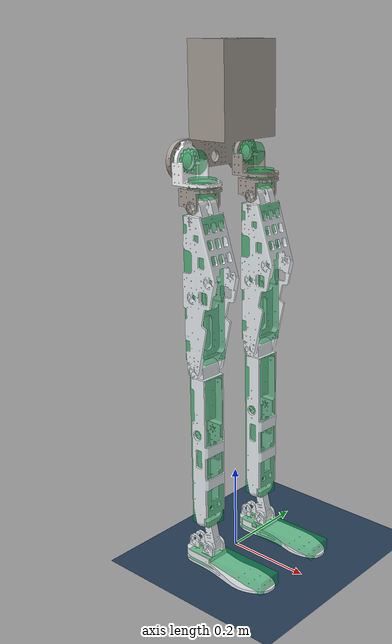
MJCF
<mujoco>
  <option timestep="0.001" iterations='50' solver='PGS' gravity='0 0 -9.81' />
  <compiler angle="radian" autolimits="true" meshdir="../meshes" />
  <default>
    <joint limited="true" armature="0.05" damping="0.01"/>
    <motor ctrllimited="true" ctrlrange="-100 100"/>
    <equality solref="0.005 1"/>
  </default>
  <asset>
    <mesh name="base_link" file="base_link.STL" />
    <mesh name="ll1" file="ll1.STL" />
    <mesh name="ll2" file="ll2.STL" />
    <mesh name="ll3" file="ll3.STL" />
    <mesh name="ll4" file="ll4.STL" />
    <mesh name="ll5" file="ll5.STL" />
    <mesh name="rl1" file="rl1.STL" />
    <mesh name="rl2" file="rl2.STL" />
    <mesh name="rl3" file="rl3.STL" />
    <mesh name="rl4" file="rl4.STL" />
    <mesh name="rl5" file="rl5.STL" />
    <texture type="skybox" builtin="gradient" rgb1="0.3 0.5 0.7" rgb2="0 0 0" width="512" height="3072" />
    <texture type="2d" name="groundplane" builtin="checker" mark="edge" rgb1="0.2 0.3 0.4" rgb2="0.1 0.2 0.3" markrgb="0.8 0.8 0.8" width="300" height="300" />
    <material name="groundplane" texture="groundplane" texuniform="true" texrepeat="5 5" reflectance="0.2" />
  </asset>
  <worldbody>
    <body name="base_link" pos="0.0 0.0 0.975" quat="1.0 0.0 0.0 0.0">
      <inertial mass="25.4" pos="-0.00058348 -3.6892e-07 0.098631" quat="0.999999851 -1.738e-05 0 0" diaginertia="0.13869 0.10486 0.075742" />
      <joint name="dummy_to_base_link" type="free" pos="0.0 0.0 0.0" axis="0.0 0.0 1.0" range="0.0 0.0" damping="0.0" stiffness="0.0" armature="0.0" frictionloss="0.0" />
      <geom type="mesh" mesh="base_link" contype="0" conaffinity="0" pos="0.0 0.0 0.0" quat="1.0 0.0 0.0 0.0" rgba="0.65098 0.61961 0.58824 1" />
      <geom rgba="0 0.7 0.3 0.5" type="box" pos="0.0 0.0 0.10" quat="1.0 0.0 0.0 0.0" size="0.05 0.08 0.10" contype="1" conaffinity="1" friction="1.0 0.005 0.0001" />
      <body name="ll1" pos="-0.055306 0.0925 -0.043" quat="1.0 0.0 0.0 0.0">
        <inertial mass="1.73" pos="0.0203 0.0203 -0.021882" quat="0.678165 0.678164 -0.200231 0.200231" diaginertia="0.00064365 0.00040381 0.00057925" />
        <joint name="left_leg_hip_roll" type="hinge" pos="0.0 0.0 0.0" axis="-1 0 0" range="-1.57 0.17" damping="0.0" stiffness="0.0" armature="0.05" frictionloss="0.175" />
        <geom type="mesh" mesh="ll1" contype="0" conaffinity="0" pos="0.0 0.0 0.0" quat="1.0 0.0 0.0 0.0" rgba="0.65098 0.61961 0.58824 1" />
        <geom rgba="0 0.7 0.3 0.5" type="cylinder" pos="0.02 0.0 0.0" quat="0.707 0.0 0.707 0.0" size="0.025 0.025" contype="1" conaffinity="1" friction="1.0 0.005 0.0001" />
        <body name="ll2" pos="0.0540088 0 -0.0425" quat="1.0 0.0 0.0 0.0">
          <inertial mass="0.55" pos="-0.011966 -9.5758e-09 -0.023875" quat="0.44166 0.44166 -0.552211 0.552211" diaginertia="0.00030663 0.00020556 0.00040354" />
          <joint name="left_leg_hip_yaw" type="hinge" pos="0.0 0.0 0.0" axis="0 0 1" range="-0.79 0.79" damping="0.0" stiffness="0.0" armature="0.05" frictionloss="0.075" />
          <geom type="mesh" mesh="ll2" contype="0" conaffinity="0" pos="0.0 0.0 0.0" quat="1.0 0.0 0.0 0.0" rgba="0.65098 0.61961 0.58824 1" />
          <geom rgba="0 0.7 0.3 0.5" type="cylinder" pos="0.0 0.0 -0.01" quat="1.0 0.0 0.0 0.0" size="0.03 0.02" contype="1" conaffinity="1" friction="1.0 0.005 0.0001" />
          <body name="ll3" pos="0 0 -0.0455" quat="1.0 0.0 0.0 0.0">
            <inertial mass="5.049" pos="0.01087 -4.44e-05 -0.18406" quat="0.706566 0.036258 0.0363586 0.705782" diaginertia="0.23235 0.23924 0.011741" />
            <joint name="left_leg_hip_pitch" type="hinge" pos="0.0 0.0 0.0" axis="0 -1 0" range="-1.4 0.34" damping="0.0" stiffness="0.0" armature="0.05" frictionloss="0.075" />
            <geom type="mesh" mesh="ll3" contype="0" conaffinity="0" pos="0.0 0.0 0.0" quat="1.0 0.0 0.0 0.0" rgba="0.89804 0.91765 0.92941 1" />
            <geom rgba="0 0.7 0.3 0.5" type="box" pos="0.0 0.0 -0.18" quat="1.0 0.0 0.0 0.0" size="0.03 0.03 0.16" contype="1" conaffinity="1" friction="1.0 0.005 0.0001" />
            <body name="ll4" pos="0 0 -0.3596" quat="1.0 0.0 0.0 0.0">
              <inertial mass="1.993" pos="-0.0029 -0.00028 -0.231" quat="0.731204 -0.00659271 -0.00712089 0.68209" diaginertia="0.13785 0.13792 0.001226" />
              <joint name="left_knee" type="hinge" pos="0.0 0.0 0.0" axis="0 1 0" range="0 1.4" damping="0.0" stiffness="0.0" armature="0.05" frictionloss="0.075" />
              <geom type="mesh" mesh="ll4" contype="0" conaffinity="0" pos="0.0 0.0 0.0" quat="1.0 0.0 0.0 0.0" rgba="0.89804 0.91765 0.92941 1" />
              <geom rgba="0 0.7 0.3 0.5" type="box" pos="0.0 0.0 -0.20" quat="1.0 0.0 0.0 0.0" size="0.025 0.025 0.18" contype="1" conaffinity="1" friction="1.0 0.005 0.0001" />
              <body name="ll5" pos="0.015 0 -0.44" quat="1.0 0.0 0.0 0.0">
                <inertial mass="1.118" pos="0.0296 -0.002 -0.034" quat="0.0842257 0.672271 0.0840174 0.730684" diaginertia="0.000587 0.005066 0.00537" />
                <joint name="left_leg_ank_pitch" type="hinge" pos="0.0 0.0 0.0" axis="0 1 0" range="-0.87 0.87" damping="0.0" stiffness="0.0" armature="0.05" frictionloss="0.075" />
                <geom type="mesh" mesh="ll5" contype="0" conaffinity="0" pos="0.0 0.0 0.0" quat="1.0 0.0 0.0 0.0" rgba="0.89804 0.91765 0.92941 1" />
                <geom rgba="0 0.7 0.3 0.5" type="box" pos="0.06 0.00 -0.03" quat="1.0 0.0 0.0 0.0" size="0.11 0.03 0.015" contype="1" conaffinity="1" friction="1.0 0.005 0.0001" />
              </body>
            </body>
          </body>
        </body>
      </body>
      <body name="rl1" pos="-0.0553058 -0.0925 -0.043" quat="1.0 0.0 0.0 0.0">
        <inertial mass="1.73" pos="0.0203 0.0203 -0.021882" quat="0.678165 0.678164 -0.200231 0.200231" diaginertia="0.00064365 0.00040381 0.00057925" />
        <joint name="right_leg_hip_roll" type="hinge" pos="0.0 0.0 0.0" axis="-1 0 0" range="-0.17 1.57" damping="0.0" stiffness="0.0" armature="0.05" frictionloss="0.175" />
        <geom type="mesh" mesh="rl1" contype="0" conaffinity="0" pos="0.0 0.0 0.0" quat="1.0 0.0 0.0 0.0" rgba="1 1 1 1" />
        <geom rgba="0 0.7 0.3 0.5" type="cylinder" pos="0.02 0.0 0.0" quat="0.707 0.0 0.707 0.0" size="0.025 0.025" contype="1" conaffinity="1" friction="1.0 0.005 0.0001" />
        <body name="rl2" pos="0.0540088 0 -0.0425" quat="1.0 0.0 0.0 0.0">
          <inertial mass="0.55" pos="-0.011966 -9.5758e-09 -0.023875" quat="0.44166 0.44166 -0.552211 0.552211" diaginertia="0.00030663 0.00020556 0.00040354" />
          <joint name="right_leg_hip_yaw" type="hinge" pos="0.0 0.0 0.0" axis="0 0 1" range="-0.79 0.79" damping="0.0" stiffness="0.0" armature="0.05" frictionloss="0.075" />
          <geom type="mesh" mesh="rl2" contype="0" conaffinity="0" pos="0.0 0.0 0.0" quat="1.0 0.0 0.0 0.0" rgba="0.65098 0.61961 0.58824 1" />
          <geom rgba="0 0.7 0.3 0.5" type="cylinder" pos="0.0 0.0 -0.01" quat="1.0 0.0 0.0 0.0" size="0.03 0.02" contype="1" conaffinity="1" friction="1.0 0.005 0.0001" />
          <body name="rl3" pos="0 0 -0.0455" quat="1.0 0.0 0.0 0.0">
            <inertial mass="5.049" pos="0.01087 -4.44e-05 -0.19733" quat="0.706566 0.036258 0.0363586 0.705782" diaginertia="0.23235 0.23924 0.011741" />
            <joint name="right_leg_hip_pitch" type="hinge" pos="0.0 0.0 0.0" axis="0 -1 0" range="-1.4 0.34" damping="0.0" stiffness="0.0" armature="0.05" frictionloss="0.075" />
            <geom type="mesh" mesh="rl3" contype="0" conaffinity="0" pos="0.0 0.0 0.0" quat="1.0 0.0 0.0 0.0" rgba="0.89804 0.91765 0.92941 1" />
            <geom rgba="0 0.7 0.3 0.5" type="box" pos="0.0 0.0 -0.18" quat="1.0 0.0 0.0 0.0" size="0.03 0.03 0.16" contype="1" conaffinity="1" friction="1.0 0.005 0.0001" />
            <body name="rl4" pos="0 0 -0.3596" quat="1.0 0.0 0.0 0.0">
              <inertial mass="1.993" pos="-0.0029 -0.00028 -0.231" quat="0.731204 -0.00659271 -0.00712089 0.68209" diaginertia="0.13785 0.13792 0.001226" />
              <joint name="right_knee" type="hinge" pos="0.0 0.0 0.0" axis="0 1 0" range="0 1.4" damping="0.0" stiffness="0.0" armature="0.05" frictionloss="0.075" />
              <geom type="mesh" mesh="rl4" contype="0" conaffinity="0" pos="0.0 0.0 0.0" quat="1.0 0.0 0.0 0.0" rgba="0.89804 0.91765 0.92941 1" />
              <geom rgba="0 0.7 0.3 0.5" type="box" pos="0.0 0.0 -0.20" quat="1.0 0.0 0.0 0.0" size="0.025 0.025 0.18" contype="1" conaffinity="1" friction="1.0 0.005 0.0001" />
              <body name="rl5" pos="0.015 0 -0.44" quat="1.0 0.0 0.0 0.0">
                <inertial mass="1.118" pos="0.0296 -0.002 -0.034" quat="0.0842257 0.672271 0.0840174 0.730684" diaginertia="0.000587 0.005066 0.00537" />
                <joint name="right_leg_ank_pitch" type="hinge" pos="0.0 0.0 0.0" axis="0 -1 0" range="-0.87 0.87" damping="0.0" stiffness="0.0" armature="0.05" frictionloss="0.075" />
                <geom type="mesh" mesh="rl5" contype="0" conaffinity="0" pos="0.0 0.0 0.0" quat="1.0 0.0 0.0 0.0" rgba="0.89804 0.91765 0.92941 1" />
                <geom rgba="0 0.7 0.3 0.5" type="box" pos="0.06 0.00 -0.03" quat="1.0 0.0 0.0 0.0" size="0.11 0.03 0.015" contype="1" conaffinity="1" friction="1.0 0.005 0.0001" />
              </body>
            </body>
          </body>
        </body>
      </body>
    </body>
    <light pos="0 0 3.5" dir="0 0 -1" directional="true" />
    <geom name="floor" size="0 0 0.05" type="plane" material="groundplane" condim="3" conaffinity="15"  friction=".5 0.005 0.0001"  />
  </worldbody>
  <actuator>
    <motor name="left_leg_hip_roll_motor"   joint="left_leg_hip_roll"   ctrlrange="-60.0 60.0" />
    <motor name="left_leg_hip_yaw_motor"    joint="left_leg_hip_yaw"    ctrlrange="-33.0 33.0" />
    <motor name="left_leg_hip_pitch_motor"  joint="left_leg_hip_pitch"  ctrlrange="-300.0 300.0" />
    <motor name="left_knee_motor"           joint="left_knee"           ctrlrange="-300.0 300.0" />
    <motor name="left_leg_ank_pitch_motor"  joint="left_leg_ank_pitch"  ctrlrange="-50.0 50.0" />
    <motor name="right_leg_hip_roll_motor"  joint="right_leg_hip_roll"  ctrlrange="-60.0 60.0" />
    <motor name="right_leg_hip_yaw_motor"   joint="right_leg_hip_yaw"   ctrlrange="-33.0 33.0" />
    <motor name="right_leg_hip_pitch_motor" joint="right_leg_hip_pitch" ctrlrange="-300.0 300.0" />
    <motor name="right_knee_motor"          joint="right_knee"          ctrlrange="-300.0 300.0" />
    <motor name="right_leg_ank_pitch_motor" joint="right_leg_ank_pitch" ctrlrange="-50.0 50.0" />
  </actuator>
  <visual>
    <headlight diffuse="0.6 0.6 0.6" ambient="0.3 0.3 0.3" specular="0 0 0" />
    <rgba haze="0.15 0.25 0.35 1" />
    <global azimuth="160" elevation="-20" />
  </visual>
</mujoco>
